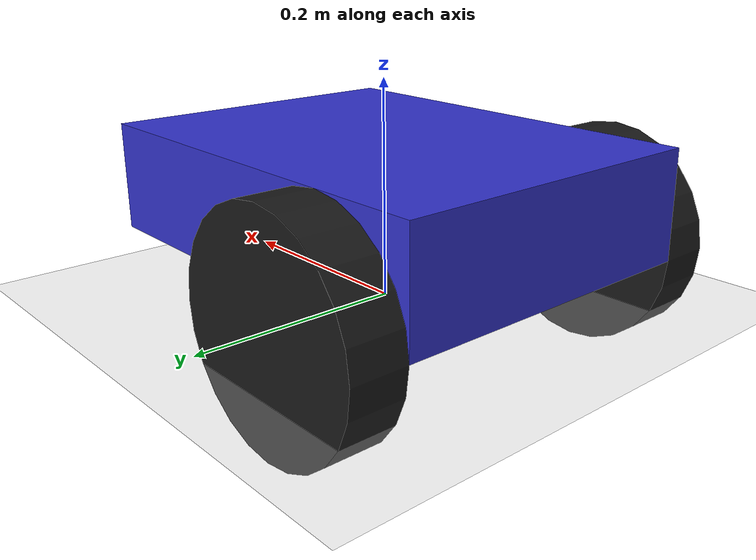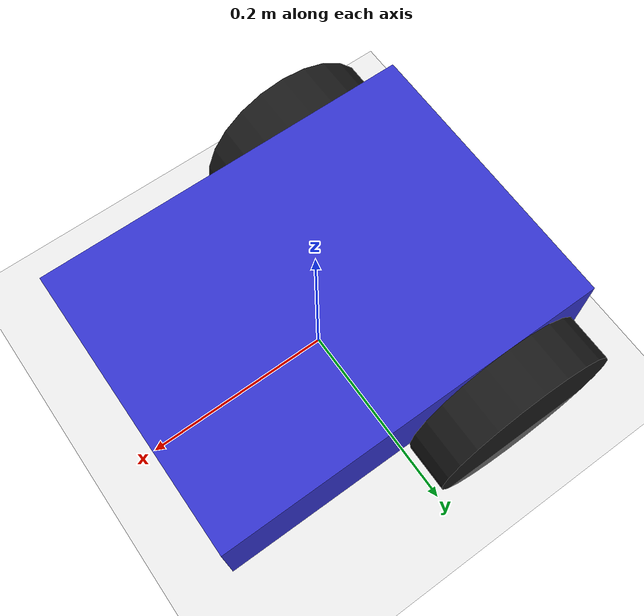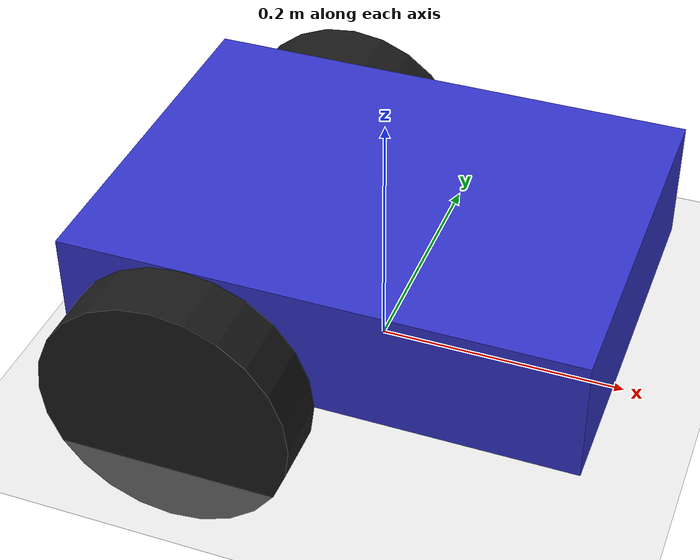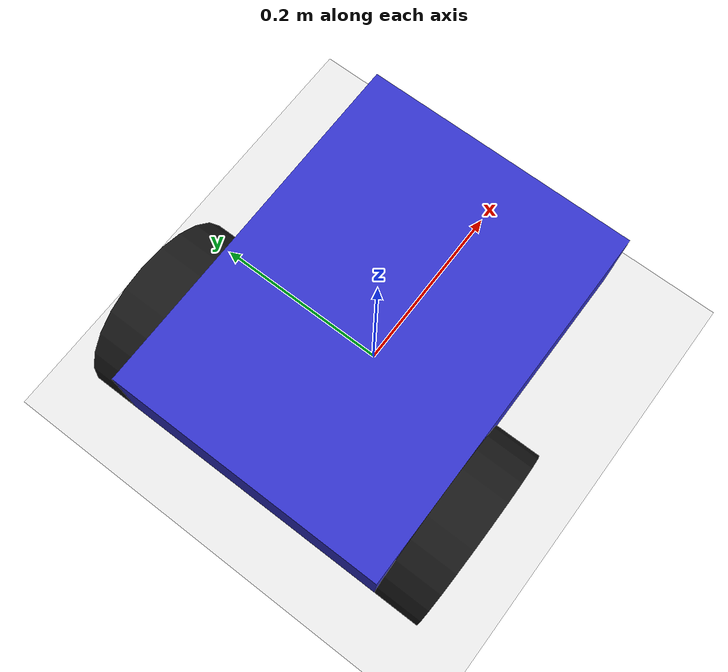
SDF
<?xml version="1.0" ?>
<sdf version="1.9">
  <world name="diff_drive_world">

    <physics name="1ms" type="ode">
      <max_step_size>0.001</max_step_size>
      <real_time_factor>1.0</real_time_factor>
    </physics>

    <plugin filename="gz-sim-physics-system" name="gz::sim::systems::Physics">
    </plugin>
    <plugin filename="gz-sim-user-commands-system" name="gz::sim::systems::UserCommands">
    </plugin>
    <plugin filename="gz-sim-scene-broadcaster-system" name="gz::sim::systems::SceneBroadcaster">
    </plugin>

    <light type="directional" name="sun">
      <cast_shadows>true</cast_shadows>
      <pose>0 0 10 0 0 0</pose>
      <diffuse>0.8 0.8 0.8 1</diffuse>
      <specular>0.2 0.2 0.2 1</specular>
      <attenuation>
        <range>1000</range>
        <constant>0.9</constant>
        <linear>0.01</linear>
        <quadratic>0.001</quadratic>
      </attenuation>
      <direction>-0.5 0.1 -0.9</direction>
    </light>

    <model name="ground_plane">
      <static>true</static>
      <link name="link">
        <collision name="collision">
          <geometry>
            <plane>
              <normal>0 0 1</normal>
              <size>100 100</size>
            </plane>
          </geometry>
          <surface>
            <friction>
              <ode>
                <mu>1.0</mu>
                <mu2>1.0</mu2>
              </ode>
            </friction>
          </surface>
        </collision>
        <visual name="visual">
          <geometry>
            <plane>
              <normal>0 0 1</normal>
              <size>100 100</size>
            </plane>
          </geometry>
          <material>
            <ambient>0.8 0.8 0.8 1</ambient>
            <diffuse>0.8 0.8 0.8 1</diffuse>
            <specular>0.8 0.8 0.8 1</specular>
          </material>
        </visual>
      </link>
    </model>

    <model name="diff_drive_robot">
      <pose>0 0 0.1 0 0 0</pose>

      <link name="chassis">
        <pose>0 0 0 0 0 0</pose>
        <inertial>
          <mass>5.0</mass>
          <inertia>
            <ixx>0.0625</ixx>
            <iyy>0.125</iyy>
            <izz>0.175</izz>
            <ixy>0</ixy>
            <ixz>0</ixz>
            <iyz>0</iyz>
          </inertia>
        </inertial>
        <collision name="collision">
          <geometry>
            <box>
              <size>0.4 0.3 0.1</size>
            </box>
          </geometry>
        </collision>
        <visual name="visual">
          <geometry>
            <box>
              <size>0.4 0.3 0.1</size>
            </box>
          </geometry>
          <material>
            <ambient>0.2 0.2 0.8 1</ambient>
            <diffuse>0.2 0.2 0.8 1</diffuse>
            <specular>0.2 0.2 0.8 1</specular>
          </material>
        </visual>

        <collision name="caster_collision">
          <pose>0.15 0 -0.075 0 0 0</pose>
          <geometry>
            <sphere>
              <radius>0.025</radius>
            </sphere>
          </geometry>
          <surface>
            <friction>
              <ode>
                <mu>0.0</mu>
                <mu2>0.0</mu2>
              </ode>
            </friction>
          </surface>
        </collision>
        <visual name="caster_visual">
          <pose>0.15 0 -0.075 0 0 0</pose>
          <geometry>
            <sphere>
              <radius>0.025</radius>
            </sphere>
          </geometry>
          <material>
            <ambient>0.1 0.1 0.1 1</ambient>
            <diffuse>0.1 0.1 0.1 1</diffuse>
          </material>
        </visual>
      </link>

      <link name="left_wheel">
        <pose>-0.1 0.175 -0.05 -1.5707963267948966 0 0</pose>
        <inertial>
          <mass>0.5</mass>
          <inertia>
            <ixx>0.000725</ixx>
            <iyy>0.000725</iyy>
            <izz>0.00125</izz>
            <ixy>0</ixy>
            <ixz>0</ixz>
            <iyz>0</iyz>
          </inertia>
        </inertial>
        <collision name="collision">
          <geometry>
            <cylinder>
              <radius>0.1</radius>
              <length>0.05</length>
            </cylinder>
          </geometry>
          <surface>
            <friction>
              <ode>
                <mu>1.5</mu>
                <mu2>1.5</mu2>
              </ode>
            </friction>
          </surface>
        </collision>
        <visual name="visual">
          <geometry>
            <cylinder>
              <radius>0.1</radius>
              <length>0.05</length>
            </cylinder>
          </geometry>
          <material>
            <ambient>0.1 0.1 0.1 1</ambient>
            <diffuse>0.1 0.1 0.1 1</diffuse>
          </material>
        </visual>
      </link>

      <link name="right_wheel">
        <pose>-0.1 -0.175 -0.05 -1.5707963267948966 0 0</pose>
        <inertial>
          <mass>0.5</mass>
          <inertia>
            <ixx>0.000725</ixx>
            <iyy>0.000725</iyy>
            <izz>0.00125</izz>
            <ixy>0</ixy>
            <ixz>0</ixz>
            <iyz>0</iyz>
          </inertia>
        </inertial>
        <collision name="collision">
          <geometry>
            <cylinder>
              <radius>0.1</radius>
              <length>0.05</length>
            </cylinder>
          </geometry>
          <surface>
            <friction>
              <ode>
                <mu>1.5</mu>
                <mu2>1.5</mu2>
              </ode>
            </friction>
          </surface>
        </collision>
        <visual name="visual">
          <geometry>
            <cylinder>
              <radius>0.1</radius>
              <length>0.05</length>
            </cylinder>
          </geometry>
          <material>
            <ambient>0.1 0.1 0.1 1</ambient>
            <diffuse>0.1 0.1 0.1 1</diffuse>
          </material>
        </visual>
      </link>

      <joint name="left_wheel_joint" type="revolute">
        <parent>chassis</parent>
        <child>left_wheel</child>
        <axis>
          <xyz>0 0 1</xyz>
          <limit>
            <lower>-1.79769e+308</lower>
            <upper>1.79769e+308</upper>
          </limit>
        </axis>
      </joint>

      <joint name="right_wheel_joint" type="revolute">
        <parent>chassis</parent>
        <child>right_wheel</child>
        <axis>
          <xyz>0 0 1</xyz>
          <limit>
            <lower>-1.79769e+308</lower>
            <upper>1.79769e+308</upper>
          </limit>
        </axis>
      </joint>

      <plugin filename="gz-sim-diff-drive-system" name="gz::sim::systems::DiffDrive">
        <left_joint>left_wheel_joint</left_joint>
        <right_joint>right_wheel_joint</right_joint>
        <wheel_separation>0.35</wheel_separation>
        <wheel_radius>0.1</wheel_radius>
        <max_linear_acceleration>2.0</max_linear_acceleration>
        <min_linear_acceleration>-2.0</min_linear_acceleration>
        <max_angular_acceleration>4.0</max_angular_acceleration>
        <min_angular_acceleration>-4.0</min_angular_acceleration>
        <topic>/cmd_vel</topic>
        <odom_topic>/odom</odom_topic>
        <frame_id>odom</frame_id>
        <child_frame_id>chassis</child_frame_id>
        <odom_publish_frequency>50</odom_publish_frequency>
      </plugin>

    </model>

  </world>
</sdf>
